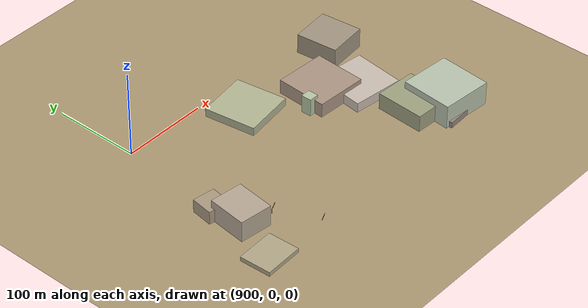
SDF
<sdf version="1.9">
 <world name="crossroad_world">
  <model name="ground_plane">
   <static>true</static>
   <pose>0 0 -0.05 0 0 0</pose>
   <link name="link">
    <collision name="collision">
     <geometry><plane><normal>0 0 1</normal><size>10000 10000</size></plane></geometry>
    </collision>
    <visual name="visual">
     <geometry><plane><normal>0 0 1</normal><size>15000 15000</size></plane></geometry>
     <material><ambient>0.68 0.60 0.45 1</ambient><diffuse>0.68 0.60 0.45 1</diffuse></material>
    </visual>
   </link>
  </model>
  <model name="gantry_117">
   <static>true</static>
   <pose>948.192 -214.401 0 0 0 0.425</pose>
   <link name="link">
    <visual name="post_l">
     <pose>-5.700 0 2.925 0 0 0</pose>
     <geometry><cylinder><radius>0.1</radius><length>5.85</length></cylinder></geometry>
     <material><ambient>0.30 0.30 0.35 1</ambient><diffuse>0.30 0.30 0.35 1</diffuse></material>
    </visual>
    <visual name="post_r">
     <pose>5.700 0 2.925 0 0 0</pose>
     <geometry><cylinder><radius>0.1</radius><length>5.85</length></cylinder></geometry>
     <material><ambient>0.30 0.30 0.35 1</ambient><diffuse>0.30 0.30 0.35 1</diffuse></material>
    </visual>
    <visual name="beam">
     <pose>0 0 6.000 0 0 0</pose>
     <geometry><box><size>11.400 0.22 0.22</size></box></geometry>
     <material><ambient>0.30 0.30 0.35 1</ambient><diffuse>0.30 0.30 0.35 1</diffuse></material>
    </visual>
    <visual name="sign_border">
     <pose>0 -0.14 5.450 0 0 0</pose>
     <geometry><box><size>8.288 0.04 0.92</size></box></geometry>
     <material><ambient>0.90 0.85 0.10 1</ambient><diffuse>0.90 0.85 0.10 1</diffuse></material>
    </visual>
    <visual name="sign_panel">
     <pose>0 -0.15 5.450 0 0 0</pose>
     <geometry><box><size>8.208 0.05 0.86</size></box></geometry>
     <material><ambient>0.05 0.38 0.10 1</ambient><diffuse>0.05 0.38 0.10 1</diffuse></material>
    </visual>
    <collision name="col_post_l">
     <pose>-5.700 0 2.925 0 0 0</pose>
     <geometry><cylinder><radius>0.1</radius><length>5.85</length></cylinder></geometry>
    </collision>
    <collision name="col_post_r">
     <pose>5.700 0 2.925 0 0 0</pose>
     <geometry><cylinder><radius>0.1</radius><length>5.85</length></cylinder></geometry>
    </collision>
    <collision name="col_beam">
     <pose>0 0 6.000 0 0 0</pose>
     <geometry><box><size>11.400 0.22 0.22</size></box></geometry>
    </collision>
   </link>
  </model>
  <model name="gantry_118">
   <static>true</static>
   <pose>899.295 -115.047 0 0 0 0.640</pose>
   <link name="link">
    <visual name="post_l">
     <pose>-5.700 0 2.925 0 0 0</pose>
     <geometry><cylinder><radius>0.1</radius><length>5.85</length></cylinder></geometry>
     <material><ambient>0.30 0.30 0.35 1</ambient><diffuse>0.30 0.30 0.35 1</diffuse></material>
    </visual>
    <visual name="post_r">
     <pose>5.700 0 2.925 0 0 0</pose>
     <geometry><cylinder><radius>0.1</radius><length>5.85</length></cylinder></geometry>
     <material><ambient>0.30 0.30 0.35 1</ambient><diffuse>0.30 0.30 0.35 1</diffuse></material>
    </visual>
    <visual name="beam">
     <pose>0 0 6.000 0 0 0</pose>
     <geometry><box><size>11.400 0.22 0.22</size></box></geometry>
     <material><ambient>0.30 0.30 0.35 1</ambient><diffuse>0.30 0.30 0.35 1</diffuse></material>
    </visual>
    <visual name="sign_border">
     <pose>0 -0.14 5.450 0 0 0</pose>
     <geometry><box><size>8.288 0.04 0.92</size></box></geometry>
     <material><ambient>0.90 0.85 0.10 1</ambient><diffuse>0.90 0.85 0.10 1</diffuse></material>
    </visual>
    <visual name="sign_panel">
     <pose>0 -0.15 5.450 0 0 0</pose>
     <geometry><box><size>8.208 0.05 0.86</size></box></geometry>
     <material><ambient>0.05 0.38 0.10 1</ambient><diffuse>0.05 0.38 0.10 1</diffuse></material>
    </visual>
    <collision name="col_post_l">
     <pose>-5.700 0 2.925 0 0 0</pose>
     <geometry><cylinder><radius>0.1</radius><length>5.85</length></cylinder></geometry>
    </collision>
    <collision name="col_post_r">
     <pose>5.700 0 2.925 0 0 0</pose>
     <geometry><cylinder><radius>0.1</radius><length>5.85</length></cylinder></geometry>
    </collision>
    <collision name="col_beam">
     <pose>0 0 6.000 0 0 0</pose>
     <geometry><box><size>11.400 0.22 0.22</size></box></geometry>
    </collision>
   </link>
  </model>
  <model name="gantry_119">
   <static>true</static>
   <pose>929.318 -166.433 0 0 0 0.431</pose>
   <link name="link">
    <visual name="post_l">
     <pose>-5.700 0 2.925 0 0 0</pose>
     <geometry><cylinder><radius>0.1</radius><length>5.85</length></cylinder></geometry>
     <material><ambient>0.30 0.30 0.35 1</ambient><diffuse>0.30 0.30 0.35 1</diffuse></material>
    </visual>
    <visual name="post_r">
     <pose>5.700 0 2.925 0 0 0</pose>
     <geometry><cylinder><radius>0.1</radius><length>5.85</length></cylinder></geometry>
     <material><ambient>0.30 0.30 0.35 1</ambient><diffuse>0.30 0.30 0.35 1</diffuse></material>
    </visual>
    <visual name="beam">
     <pose>0 0 6.000 0 0 0</pose>
     <geometry><box><size>11.400 0.22 0.22</size></box></geometry>
     <material><ambient>0.30 0.30 0.35 1</ambient><diffuse>0.30 0.30 0.35 1</diffuse></material>
    </visual>
    <visual name="sign_border">
     <pose>0 -0.14 5.450 0 0 0</pose>
     <geometry><box><size>8.288 0.04 0.92</size></box></geometry>
     <material><ambient>0.90 0.85 0.10 1</ambient><diffuse>0.90 0.85 0.10 1</diffuse></material>
    </visual>
    <visual name="sign_panel">
     <pose>0 -0.15 5.450 0 0 0</pose>
     <geometry><box><size>8.208 0.05 0.86</size></box></geometry>
     <material><ambient>0.05 0.38 0.10 1</ambient><diffuse>0.05 0.38 0.10 1</diffuse></material>
    </visual>
    <collision name="col_post_l">
     <pose>-5.700 0 2.925 0 0 0</pose>
     <geometry><cylinder><radius>0.1</radius><length>5.85</length></cylinder></geometry>
    </collision>
    <collision name="col_post_r">
     <pose>5.700 0 2.925 0 0 0</pose>
     <geometry><cylinder><radius>0.1</radius><length>5.85</length></cylinder></geometry>
    </collision>
    <collision name="col_beam">
     <pose>0 0 6.000 0 0 0</pose>
     <geometry><box><size>11.400 0.22 0.22</size></box></geometry>
    </collision>
   </link>
  </model>
  <model name="building_80">
   <static>true</static>
   <pose>1147.331 -170.750 9.758 0 0 -0.055</pose>
   <link name="link">
    <visual name="body">
     <geometry><box><size>48.89 55.89 19.52</size></box></geometry>
     <material><ambient>0.63 0.64 0.51 1</ambient><diffuse>0.63 0.64 0.51 1</diffuse></material>
    </visual>
    <collision name="col"><geometry><box><size>48.89 55.89 19.52</size></box></geometry></collision>
   </link>
  </model>
  <model name="building_86">
   <static>true</static>
   <pose>1168.857 -35.490 11.740 0 0 0.100</pose>
   <link name="link">
    <visual name="body">
     <geometry><box><size>47.34 48.78 23.48</size></box></geometry>
     <material><ambient>0.64 0.59 0.51 1</ambient><diffuse>0.64 0.59 0.51 1</diffuse></material>
    </visual>
    <collision name="col"><geometry><box><size>47.34 48.78 23.48</size></box></geometry></collision>
   </link>
  </model>
  <model name="building_129">
   <static>true</static>
   <pose>875.047 -208.711 2.520 0 0 0.043</pose>
   <link name="link">
    <visual name="body">
     <geometry><box><size>44.59 36.16 5.04</size></box></geometry>
     <material><ambient>0.70 0.66 0.54 1</ambient><diffuse>0.70 0.66 0.54 1</diffuse></material>
    </visual>
    <collision name="col"><geometry><box><size>44.59 36.16 5.04</size></box></geometry></collision>
   </link>
  </model>
  <model name="building_131">
   <static>true</static>
   <pose>1092.656 -66.526 6.534 0 0 -0.036</pose>
   <link name="link">
    <visual name="body">
     <geometry><box><size>11.73 12.82 13.07</size></box></geometry>
     <material><ambient>0.77 0.70 0.67 1</ambient><diffuse>0.77 0.70 0.67 1</diffuse></material>
    </visual>
    <collision name="col"><geometry><box><size>11.73 12.82 13.07</size></box></geometry></collision>
   </link>
  </model>
  <model name="building_132">
   <static>true</static>
   <pose>1081.881 -80.338 5.064 0 0 -0.089</pose>
   <link name="link">
    <visual name="body">
     <geometry><box><size>11.47 12.12 10.13</size></box></geometry>
     <material><ambient>0.53 0.49 0.54 1</ambient><diffuse>0.53 0.49 0.54 1</diffuse></material>
    </visual>
    <collision name="col"><geometry><box><size>11.47 12.12 10.13</size></box></geometry></collision>
   </link>
  </model>
  <model name="building_133">
   <static>true</static>
   <pose>1073.076 -90.296 10.455 0 0 0.004</pose>
   <link name="link">
    <visual name="body">
     <geometry><box><size>11.48 12.09 20.91</size></box></geometry>
     <material><ambient>0.73 0.78 0.65 1</ambient><diffuse>0.73 0.78 0.65 1</diffuse></material>
    </visual>
    <collision name="col"><geometry><box><size>11.48 12.09 20.91</size></box></geometry></collision>
   </link>
  </model>
  <model name="building_144">
   <static>true</static>
   <pose>886.335 -123.166 7.710 0 0 -0.149</pose>
   <link name="link">
    <visual name="body">
     <geometry><box><size>25.76 25.26 15.42</size></box></geometry>
     <material><ambient>0.68 0.61 0.51 1</ambient><diffuse>0.68 0.61 0.51 1</diffuse></material>
    </visual>
    <collision name="col"><geometry><box><size>25.76 25.26 15.42</size></box></geometry></collision>
   </link>
  </model>
  <model name="building_149">
   <static>true</static>
   <pose>1137.683 -102.843 5.687 0 0 -0.118</pose>
   <link name="link">
    <visual name="body">
     <geometry><box><size>60.00 60.00 11.37</size></box></geometry>
     <material><ambient>0.80 0.75 0.70 1</ambient><diffuse>0.80 0.75 0.70 1</diffuse></material>
    </visual>
    <collision name="col"><geometry><box><size>60.00 60.00 11.37</size></box></geometry></collision>
   </link>
  </model>
  <model name="building_155">
   <static>true</static>
   <pose>1029.408 -40.113 4.855 0 0 0.143</pose>
   <link name="link">
    <visual name="body">
     <geometry><box><size>60.00 60.00 9.71</size></box></geometry>
     <material><ambient>0.71 0.72 0.59 1</ambient><diffuse>0.71 0.72 0.59 1</diffuse></material>
    </visual>
    <collision name="col"><geometry><box><size>60.00 60.00 9.71</size></box></geometry></collision>
   </link>
  </model>
  <model name="building_641">
   <static>true</static>
   <pose>894.653 -154.662 12.258 0 0 -0.119</pose>
   <link name="link">
    <visual name="body">
     <geometry><box><size>37.84 44.74 24.52</size></box></geometry>
     <material><ambient>0.72 0.66 0.59 1</ambient><diffuse>0.72 0.66 0.59 1</diffuse></material>
    </visual>
    <collision name="col"><geometry><box><size>37.84 44.74 24.52</size></box></geometry></collision>
   </link>
  </model>
  <model name="building_644">
   <static>true</static>
   <pose>1176.638 -187.657 3.606 0 0 0.051</pose>
   <link name="link">
    <visual name="body">
     <geometry><box><size>60.00 60.00 7.21</size></box></geometry>
     <material><ambient>0.60 0.54 0.50 1</ambient><diffuse>0.60 0.54 0.50 1</diffuse></material>
    </visual>
    <collision name="col"><geometry><box><size>60.00 60.00 7.21</size></box></geometry></collision>
   </link>
  </model>
  <model name="building_645">
   <static>true</static>
   <pose>1176.638 -187.657 13.802 0 0 -0.083</pose>
   <link name="link">
    <visual name="body">
     <geometry><box><size>60.00 60.00 27.60</size></box></geometry>
     <material><ambient>0.73 0.77 0.69 1</ambient><diffuse>0.73 0.77 0.69 1</diffuse></material>
    </visual>
    <collision name="col"><geometry><box><size>60.00 60.00 27.60</size></box></geometry></collision>
   </link>
  </model>
  <model name="building_648">
   <static>true</static>
   <pose>1105.043 -78.202 8.435 0 0 -0.051</pose>
   <link name="link">
    <visual name="body">
     <geometry><box><size>60.00 60.00 16.87</size></box></geometry>
     <material><ambient>0.68 0.59 0.52 1</ambient><diffuse>0.68 0.59 0.52 1</diffuse></material>
    </visual>
    <collision name="col"><geometry><box><size>60.00 60.00 16.87</size></box></geometry></collision>
   </link>
  </model>
 </world>
</sdf>
